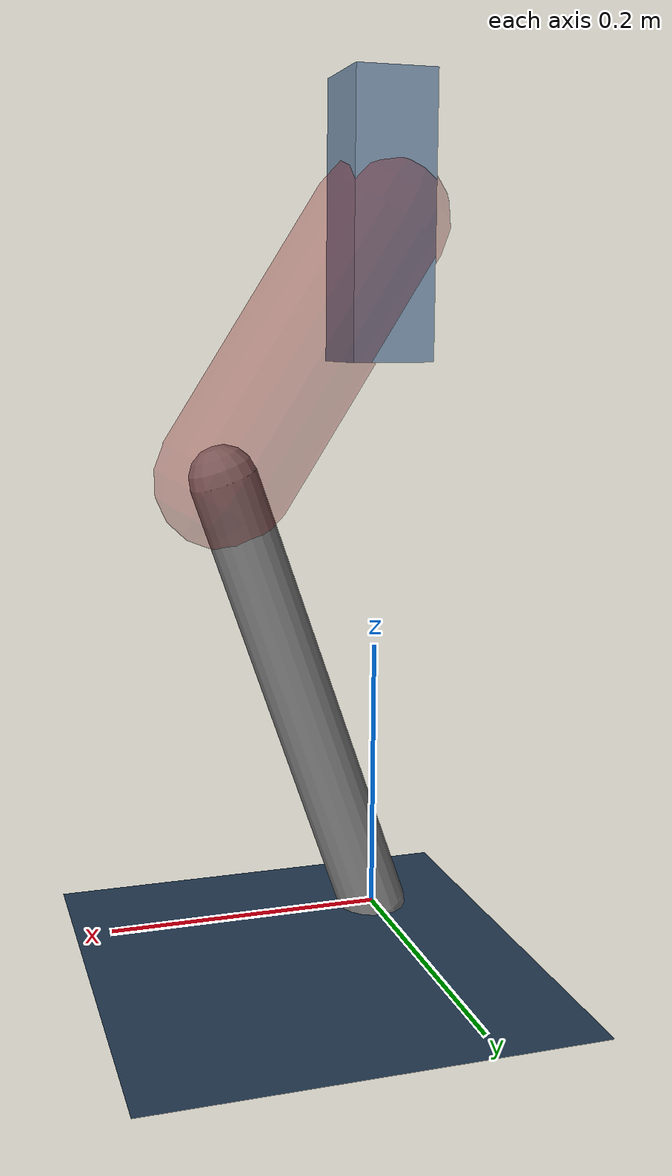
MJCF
<mujoco model="Hopper2D">
	<compiler inertiafromgeom="true" angle="radian" />
	<option timestep="0.001" integrator="implicit" cone="elliptic" solver="Newton" tolerance="1e-10" />

	<default>
		<geom contype="1" conaffinity="1" condim="3" friction="2 0.005 0.0001" solref="0.005 1" />
		<joint limited="true" damping="0.1" />
	</default>

	<asset>
		<texture name="skybox" type="skybox" builtin="gradient" rgb1=".4 .6 .8" rgb2="0 0 0" width="800" height="800" />
		<texture name="grid" type="2d" builtin="checker" rgb1=".1 .2 .3" rgb2=".2 .3 .4" width="300" height="300" mark="edge" markrgb=".2 .3 .4" />
		<material name="ground" texture="grid" texrepeat="1 1" texuniform="true" reflectance="0.1" />
		<material name="leg" rgba="0.5 0.6 0.7 1" />
	</asset>

	<worldbody>

		<geom name="floor" type="plane" size="5 5 0.25" material="ground" />

		<light directional="false" diffuse="0.8 0.8 0.8" specular="0.3 0.3 0.3" pos="0 0 2" dir="0 0 -1" />
		<light mode="targetbodycom" target="base" directional="false" diffuse="0.8 0.8 0.8" specular="0.3 0.3 0.3" pos="0 0 2" dir="0 0 -1" />

		<camera name="fixed" pos="0 -2 1" xyaxes="1 0 0 0 0 1" />
		<camera name="tracking" mode="trackcom" pos="0 -3 1" />

		<body name="root" pos="0 0 0.5092929678419902">
			<joint name="slide_x" type="slide" axis="1 0 0" range="-100 100" />
			<joint name="slide_z" type="slide" axis="0 0 1" range="0 10" />

			<body name="base" pos="0 0 0">
				<geom name="torso" type="box" size="0.03 0.03 0.1" mass="2.286" material="leg" />

				<body name="link1" pos="0 0 0" euler="0 1.0048781712931911 0">
					<joint type="hinge" axis="0 -1 0" pos="0 0 0" name="hinge1" limited="true" range="-3.14 3.14" stiffness="0" damping="0.1" />
					<geom name="thigh" type="capsule" fromto="0 0 0 0.2156821698453757 0 0" size="0.05" rgba="0.5 0 0 0.3" mass="0.7688054246134393" />

					<body name="link2" pos="0.2156821698453757 0 0" euler="0 0.9056228308559937 0">
						<joint type="hinge" axis="0 -1 0" pos="0 0 0" name="hinge2" limited="true" range="-3.14 3.14" stiffness="0" damping="0.1" />
						<geom name="shank" type="capsule" fromto="0 0 0 0.3470703622525387 0 0" size="0.025" mass="0.521556289802031" />

					</body>
				</body>
			</body>
		</body>
	</worldbody>

	<actuator>
		<motor name="torque1" joint="hinge1" ctrlrange="-58.046933942136775 58.046933942136775" ctrllimited="true" gear="1" />
		<motor name="torque2" joint="hinge2" ctrlrange="-37.85778298719452 37.85778298719452" ctrllimited="true" gear="1" />
	</actuator>
</mujoco>
